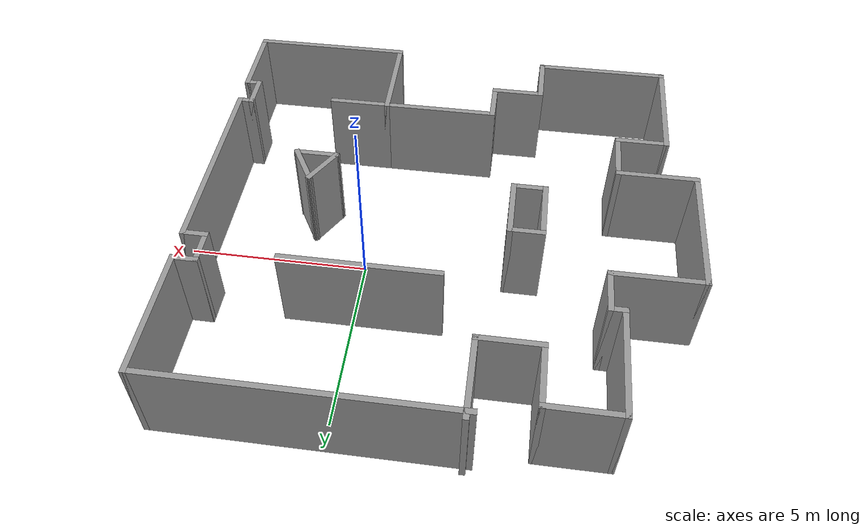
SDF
<?xml version='1.0'?>
<sdf version='1.7'>
  <model name='test3'>
    <pose>-2.21885 -0.539632 0 0 -0 0</pose>
    <link name='Wall_10'>
      <collision name='Wall_10_Collision'>
        <geometry>
          <box>
            <size>0.5 0.15 2.5</size>
          </box>
        </geometry>
        <pose>0 0 1.25 0 -0 0</pose>
      </collision>
      <visual name='Wall_10_Visual'>
        <pose>0 0 1.25 0 -0 0</pose>
        <geometry>
          <box>
            <size>0.5 0.15 2.5</size>
          </box>
        </geometry>
        <material>
          <script>
            <uri>file://media/materials/scripts/gazebo.material</uri>
            <name>Gazebo/Grey</name>
          </script>
          <ambient>1 1 1 1</ambient>
        </material>
        <meta>
          <layer>0</layer>
        </meta>
      </visual>
      <pose>6.4 -3.375 0 0 -0 3.14159</pose>
    </link>
    <link name='Wall_11'>
      <collision name='Wall_11_Collision'>
        <geometry>
          <box>
            <size>1 0.15 2.5</size>
          </box>
        </geometry>
        <pose>0 0 1.25 0 -0 0</pose>
      </collision>
      <visual name='Wall_11_Visual'>
        <pose>0 0 1.25 0 -0 0</pose>
        <geometry>
          <box>
            <size>1 0.15 2.5</size>
          </box>
        </geometry>
        <material>
          <script>
            <uri>file://media/materials/scripts/gazebo.material</uri>
            <name>Gazebo/Grey</name>
          </script>
          <ambient>1 1 1 1</ambient>
        </material>
        <meta>
          <layer>0</layer>
        </meta>
      </visual>
      <pose>6.225 -3.8 0 0 -0 -1.5708</pose>
    </link>
    <link name='Wall_14'>
      <collision name='Wall_14_Collision'>
        <geometry>
          <box>
            <size>0.5 0.15 2.5</size>
          </box>
        </geometry>
        <pose>0 0 1.25 0 -0 0</pose>
      </collision>
      <visual name='Wall_14_Visual'>
        <pose>0 0 1.25 0 -0 0</pose>
        <geometry>
          <box>
            <size>0.5 0.15 2.5</size>
          </box>
        </geometry>
        <material>
          <script>
            <uri>file://media/materials/scripts/gazebo.material</uri>
            <name>Gazebo/Grey</name>
          </script>
          <ambient>1 1 1 1</ambient>
        </material>
        <meta>
          <layer>0</layer>
        </meta>
      </visual>
      <pose>6.4 -4.225 0 0 -0 0</pose>
    </link>
    <link name='Wall_15'>
      <collision name='Wall_15_Collision'>
        <geometry>
          <box>
            <size>2.25 0.15 2.5</size>
          </box>
        </geometry>
        <pose>0 0 1.25 0 -0 0</pose>
      </collision>
      <visual name='Wall_15_Visual'>
        <pose>0 0 1.25 0 -0 0</pose>
        <geometry>
          <box>
            <size>2.25 0.15 2.5</size>
          </box>
        </geometry>
        <material>
          <script>
            <uri>file://media/materials/scripts/gazebo.material</uri>
            <name>Gazebo/Grey</name>
          </script>
          <ambient>1 1 1 1</ambient>
        </material>
        <meta>
          <layer>0</layer>
        </meta>
      </visual>
      <pose>6.575 -5.275 0 0 -0 -1.5708</pose>
    </link>
    <link name='Wall_16'>
      <collision name='Wall_16_Collision'>
        <geometry>
          <box>
            <size>4.5 0.15 2.5</size>
          </box>
        </geometry>
        <pose>0 0 1.25 0 -0 0</pose>
      </collision>
      <visual name='Wall_16_Visual'>
        <pose>0 0 1.25 0 -0 0</pose>
        <geometry>
          <box>
            <size>4.5 0.15 2.5</size>
          </box>
        </geometry>
        <material>
          <script>
            <uri>file://media/materials/scripts/gazebo.material</uri>
            <name>Gazebo/Grey</name>
          </script>
          <ambient>1 1 1 1</ambient>
        </material>
        <meta>
          <layer>0</layer>
        </meta>
      </visual>
      <pose>4.4 -6.325 0 0 -0 3.14159</pose>
    </link>
    <link name='Wall_17'>
      <collision name='Wall_17_Collision'>
        <geometry>
          <box>
            <size>2.75 0.15 2.5</size>
          </box>
        </geometry>
        <pose>0 0 1.25 0 -0 0</pose>
      </collision>
      <visual name='Wall_17_Visual'>
        <pose>0 0 1.25 0 -0 0</pose>
        <geometry>
          <box>
            <size>2.75 0.15 2.5</size>
          </box>
        </geometry>
        <material>
          <script>
            <uri>file://media/materials/scripts/gazebo.material</uri>
            <name>Gazebo/Grey</name>
          </script>
          <ambient>1 1 1 1</ambient>
        </material>
        <meta>
          <layer>0</layer>
        </meta>
      </visual>
      <pose>2.225 -5.025 0 0 -0 1.5708</pose>
    </link>
    <link name='Wall_18'>
      <collision name='Wall_18_Collision'>
        <geometry>
          <box>
            <size>1.75 0.15 2.5</size>
          </box>
        </geometry>
        <pose>0 0 1.25 0 -0 0</pose>
      </collision>
      <visual name='Wall_18_Visual'>
        <pose>0 0 1.25 0 -0 0</pose>
        <geometry>
          <box>
            <size>1.75 0.15 2.5</size>
          </box>
        </geometry>
        <material>
          <script>
            <uri>file://media/materials/scripts/gazebo.material</uri>
            <name>Gazebo/Grey</name>
          </script>
          <ambient>1 1 1 1</ambient>
        </material>
        <meta>
          <layer>0</layer>
        </meta>
      </visual>
      <pose>3.025 -3.725 0 0 -0 0</pose>
    </link>
    <link name='Wall_20'>
      <collision name='Wall_20_Collision'>
        <geometry>
          <box>
            <size>3.25 0.15 2.5</size>
          </box>
        </geometry>
        <pose>0 0 1.25 0 -0 0</pose>
      </collision>
      <visual name='Wall_20_Visual'>
        <pose>0 0 1.25 0 -0 0</pose>
        <geometry>
          <box>
            <size>3.25 0.15 2.5</size>
          </box>
        </geometry>
        <material>
          <script>
            <uri>file://media/materials/scripts/gazebo.material</uri>
            <name>Gazebo/Grey</name>
          </script>
          <ambient>1 1 1 1</ambient>
        </material>
        <meta>
          <layer>0</layer>
        </meta>
      </visual>
      <pose>0.675 -3.725 0 0 -0 3.14159</pose>
    </link>
    <link name='Wall_21'>
      <collision name='Wall_21_Collision'>
        <geometry>
          <box>
            <size>1.25 0.15 2.5</size>
          </box>
        </geometry>
        <pose>0 0 1.25 0 -0 0</pose>
      </collision>
      <visual name='Wall_21_Visual'>
        <pose>0 0 1.25 0 -0 0</pose>
        <geometry>
          <box>
            <size>1.25 0.15 2.5</size>
          </box>
        </geometry>
        <material>
          <script>
            <uri>file://media/materials/scripts/gazebo.material</uri>
            <name>Gazebo/Grey</name>
          </script>
          <ambient>1 1 1 1</ambient>
        </material>
        <meta>
          <layer>0</layer>
        </meta>
      </visual>
      <pose>-0.875 -4.275 0 0 -0 -1.5708</pose>
    </link>
    <link name='Wall_22'>
      <collision name='Wall_22_Collision'>
        <geometry>
          <box>
            <size>1.5 0.15 2.5</size>
          </box>
        </geometry>
        <pose>0 0 1.25 0 -0 0</pose>
      </collision>
      <visual name='Wall_22_Visual'>
        <pose>0 0 1.25 0 -0 0</pose>
        <geometry>
          <box>
            <size>1.5 0.15 2.5</size>
          </box>
        </geometry>
        <material>
          <script>
            <uri>file://media/materials/scripts/gazebo.material</uri>
            <name>Gazebo/Grey</name>
          </script>
          <ambient>1 1 1 1</ambient>
        </material>
        <meta>
          <layer>0</layer>
        </meta>
      </visual>
      <pose>-1.55 -4.825 0 0 -0 3.14159</pose>
    </link>
    <link name='Wall_23'>
      <collision name='Wall_23_Collision'>
        <geometry>
          <box>
            <size>1.5 0.15 2.5</size>
          </box>
        </geometry>
        <pose>0 0 1.25 0 -0 0</pose>
      </collision>
      <visual name='Wall_23_Visual'>
        <pose>0 0 1.25 0 -0 0</pose>
        <geometry>
          <box>
            <size>1.5 0.15 2.5</size>
          </box>
        </geometry>
        <material>
          <script>
            <uri>file://media/materials/scripts/gazebo.material</uri>
            <name>Gazebo/Grey</name>
          </script>
          <ambient>1 1 1 1</ambient>
        </material>
        <meta>
          <layer>0</layer>
        </meta>
      </visual>
      <pose>-2.225 -5.5 0 0 -0 -1.5708</pose>
    </link>
    <link name='Wall_24'>
      <collision name='Wall_24_Collision'>
        <geometry>
          <box>
            <size>3.75 0.15 2.5</size>
          </box>
        </geometry>
        <pose>0 0 1.25 0 -0 0</pose>
      </collision>
      <visual name='Wall_24_Visual'>
        <pose>0 0 1.25 0 -0 0</pose>
        <geometry>
          <box>
            <size>3.75 0.15 2.5</size>
          </box>
        </geometry>
        <material>
          <script>
            <uri>file://media/materials/scripts/gazebo.material</uri>
            <name>Gazebo/Grey</name>
          </script>
          <ambient>1 1 1 1</ambient>
        </material>
        <meta>
          <layer>0</layer>
        </meta>
      </visual>
      <pose>-4.025 -6.175 0 0 -0 3.14159</pose>
    </link>
    <link name='Wall_25'>
      <collision name='Wall_25_Collision'>
        <geometry>
          <box>
            <size>3.25 0.15 2.5</size>
          </box>
        </geometry>
        <pose>0 0 1.25 0 -0 0</pose>
      </collision>
      <visual name='Wall_25_Visual'>
        <pose>0 0 1.25 0 -0 0</pose>
        <geometry>
          <box>
            <size>3.25 0.15 2.5</size>
          </box>
        </geometry>
        <material>
          <script>
            <uri>file://media/materials/scripts/gazebo.material</uri>
            <name>Gazebo/Grey</name>
          </script>
          <ambient>1 1 1 1</ambient>
        </material>
        <meta>
          <layer>0</layer>
        </meta>
      </visual>
      <pose>-5.825 -4.625 0 0 -0 1.5708</pose>
    </link>
    <link name='Wall_26'>
      <collision name='Wall_26_Collision'>
        <geometry>
          <box>
            <size>1.5 0.15 2.5</size>
          </box>
        </geometry>
        <pose>0 0 1.25 0 -0 0</pose>
      </collision>
      <visual name='Wall_26_Visual'>
        <pose>0 0 1.25 0 -0 0</pose>
        <geometry>
          <box>
            <size>1.5 0.15 2.5</size>
          </box>
        </geometry>
        <material>
          <script>
            <uri>file://media/materials/scripts/gazebo.material</uri>
            <name>Gazebo/Grey</name>
          </script>
          <ambient>1 1 1 1</ambient>
        </material>
        <meta>
          <layer>0</layer>
        </meta>
      </visual>
      <pose>-5.15 -3.075 0 0 -0 0</pose>
    </link>
    <link name='Wall_27'>
      <collision name='Wall_27_Collision'>
        <geometry>
          <box>
            <size>1.5 0.15 2.5</size>
          </box>
        </geometry>
        <pose>0 0 1.25 0 -0 0</pose>
      </collision>
      <visual name='Wall_27_Visual'>
        <pose>0 0 1.25 0 -0 0</pose>
        <geometry>
          <box>
            <size>1.5 0.15 2.5</size>
          </box>
        </geometry>
        <material>
          <script>
            <uri>file://media/materials/scripts/gazebo.material</uri>
            <name>Gazebo/Grey</name>
          </script>
          <ambient>1 1 1 1</ambient>
        </material>
        <meta>
          <layer>0</layer>
        </meta>
      </visual>
      <pose>-4.475 -2.4 0 0 -0 1.5708</pose>
    </link>
    <link name='Wall_28'>
      <collision name='Wall_28_Collision'>
        <geometry>
          <box>
            <size>2.25 0.15 2.5</size>
          </box>
        </geometry>
        <pose>0 0 1.25 0 -0 0</pose>
      </collision>
      <visual name='Wall_28_Visual'>
        <pose>0 0 1.25 0 -0 0</pose>
        <geometry>
          <box>
            <size>2.25 0.15 2.5</size>
          </box>
        </geometry>
        <material>
          <script>
            <uri>file://media/materials/scripts/gazebo.material</uri>
            <name>Gazebo/Grey</name>
          </script>
          <ambient>1 1 1 1</ambient>
        </material>
        <meta>
          <layer>0</layer>
        </meta>
      </visual>
      <pose>-5.525 -1.725 0 0 -0 3.14159</pose>
    </link>
    <link name='Wall_29'>
      <collision name='Wall_29_Collision'>
        <geometry>
          <box>
            <size>3.75 0.15 2.5</size>
          </box>
        </geometry>
        <pose>0 0 1.25 0 -0 0</pose>
      </collision>
      <visual name='Wall_29_Visual'>
        <pose>0 0 1.25 0 -0 0</pose>
        <geometry>
          <box>
            <size>3.75 0.15 2.5</size>
          </box>
        </geometry>
        <material>
          <script>
            <uri>file://media/materials/scripts/gazebo.material</uri>
            <name>Gazebo/Grey</name>
          </script>
          <ambient>1 1 1 1</ambient>
        </material>
        <meta>
          <layer>0</layer>
        </meta>
      </visual>
      <pose>-6.575 0.075 0 0 -0 1.5708</pose>
    </link>
    <link name='Wall_30'>
      <collision name='Wall_30_Collision'>
        <geometry>
          <box>
            <size>2.5 0.15 2.5</size>
          </box>
        </geometry>
        <pose>0 0 1.25 0 -0 0</pose>
      </collision>
      <visual name='Wall_30_Visual'>
        <pose>0 0 1.25 0 -0 0</pose>
        <geometry>
          <box>
            <size>2.5 0.15 2.5</size>
          </box>
        </geometry>
        <material>
          <script>
            <uri>file://media/materials/scripts/gazebo.material</uri>
            <name>Gazebo/Grey</name>
          </script>
          <ambient>1 1 1 1</ambient>
        </material>
        <meta>
          <layer>0</layer>
        </meta>
      </visual>
      <pose>-5.4 1.875 0 0 -0 0</pose>
    </link>
    <link name='Wall_31'>
      <collision name='Wall_31_Collision'>
        <geometry>
          <box>
            <size>1.25 0.15 2.5</size>
          </box>
        </geometry>
        <pose>0 0 1.25 0 -0 0</pose>
      </collision>
      <visual name='Wall_31_Visual'>
        <pose>0 0 1.25 0 -0 0</pose>
        <geometry>
          <box>
            <size>1.25 0.15 2.5</size>
          </box>
        </geometry>
        <material>
          <script>
            <uri>file://media/materials/scripts/gazebo.material</uri>
            <name>Gazebo/Grey</name>
          </script>
          <ambient>1 1 1 1</ambient>
        </material>
        <meta>
          <layer>0</layer>
        </meta>
      </visual>
      <pose>-4.225 2.425 0 0 -0 1.5708</pose>
    </link>
    <link name='Wall_32'>
      <collision name='Wall_32_Collision'>
        <geometry>
          <box>
            <size>0.5 0.15 2.5</size>
          </box>
        </geometry>
        <pose>0 0 1.25 0 -0 0</pose>
      </collision>
      <visual name='Wall_32_Visual'>
        <pose>0 0 1.25 0 -0 0</pose>
        <geometry>
          <box>
            <size>0.5 0.15 2.5</size>
          </box>
        </geometry>
        <material>
          <script>
            <uri>file://media/materials/scripts/gazebo.material</uri>
            <name>Gazebo/Grey</name>
          </script>
          <ambient>1 1 1 1</ambient>
        </material>
        <meta>
          <layer>0</layer>
        </meta>
      </visual>
      <pose>-4.4 2.975 0 0 -0 3.14159</pose>
    </link>
    <link name='Wall_33'>
      <collision name='Wall_33_Collision'>
        <geometry>
          <box>
            <size>3 0.15 2.5</size>
          </box>
        </geometry>
        <pose>0 0 1.25 0 -0 0</pose>
      </collision>
      <visual name='Wall_33_Visual'>
        <pose>0 0 1.25 0 -0 0</pose>
        <geometry>
          <box>
            <size>3 0.15 2.5</size>
          </box>
        </geometry>
        <material>
          <script>
            <uri>file://media/materials/scripts/gazebo.material</uri>
            <name>Gazebo/Grey</name>
          </script>
          <ambient>1 1 1 1</ambient>
        </material>
        <meta>
          <layer>0</layer>
        </meta>
      </visual>
      <pose>-4.575 4.4 0 0 -0 1.5708</pose>
    </link>
    <link name='Wall_34'>
      <collision name='Wall_34_Collision'>
        <geometry>
          <box>
            <size>2 0.15 2.5</size>
          </box>
        </geometry>
        <pose>0 0 1.25 0 -0 0</pose>
      </collision>
      <visual name='Wall_34_Visual'>
        <pose>0 0 1.25 0 -0 0</pose>
        <geometry>
          <box>
            <size>2 0.15 2.5</size>
          </box>
        </geometry>
        <material>
          <script>
            <uri>file://media/materials/scripts/gazebo.material</uri>
            <name>Gazebo/Grey</name>
          </script>
          <ambient>1 1 1 1</ambient>
        </material>
        <meta>
          <layer>0</layer>
        </meta>
      </visual>
      <pose>-3.65 5.825 0 0 -0 0</pose>
    </link>
    <link name='Wall_35'>
      <collision name='Wall_35_Collision'>
        <geometry>
          <box>
            <size>1.75 0.15 2.5</size>
          </box>
        </geometry>
        <pose>0 0 1.25 0 -0 0</pose>
      </collision>
      <visual name='Wall_35_Visual'>
        <pose>0 0 1.25 0 -0 0</pose>
        <geometry>
          <box>
            <size>1.75 0.15 2.5</size>
          </box>
        </geometry>
        <material>
          <script>
            <uri>file://media/materials/scripts/gazebo.material</uri>
            <name>Gazebo/Grey</name>
          </script>
          <ambient>1 1 1 1</ambient>
        </material>
        <meta>
          <layer>0</layer>
        </meta>
      </visual>
      <pose>-2.725 5.025 0 0 -0 -1.5708</pose>
    </link>
    <link name='Wall_36'>
      <collision name='Wall_36_Collision'>
        <geometry>
          <box>
            <size>1.75 0.15 2.5</size>
          </box>
        </geometry>
        <pose>0 0 1.25 0 -0 0</pose>
      </collision>
      <visual name='Wall_36_Visual'>
        <pose>0 0 1.25 0 -0 0</pose>
        <geometry>
          <box>
            <size>1.75 0.15 2.5</size>
          </box>
        </geometry>
        <material>
          <script>
            <uri>file://media/materials/scripts/gazebo.material</uri>
            <name>Gazebo/Grey</name>
          </script>
          <ambient>1 1 1 1</ambient>
        </material>
        <meta>
          <layer>0</layer>
        </meta>
      </visual>
      <pose>-1.925 4.225 0 0 -0 0</pose>
    </link>
    <link name='Wall_37'>
      <collision name='Wall_37_Collision'>
        <geometry>
          <box>
            <size>2.25 0.15 2.5</size>
          </box>
        </geometry>
        <pose>0 0 1.25 0 -0 0</pose>
      </collision>
      <visual name='Wall_37_Visual'>
        <pose>0 0 1.25 0 -0 0</pose>
        <geometry>
          <box>
            <size>2.25 0.15 2.5</size>
          </box>
        </geometry>
        <material>
          <script>
            <uri>file://media/materials/scripts/gazebo.material</uri>
            <name>Gazebo/Grey</name>
          </script>
          <ambient>1 1 1 1</ambient>
        </material>
        <meta>
          <layer>0</layer>
        </meta>
      </visual>
      <pose>-1.125 5.275 0 0 -0 1.5708</pose>
    </link>
    <link name='Wall_39'>
      <collision name='Wall_39_Collision'>
        <geometry>
          <box>
            <size>4.25 0.15 2.5</size>
          </box>
        </geometry>
        <pose>0 0 1.25 0 -0 0</pose>
      </collision>
      <visual name='Wall_39_Visual'>
        <pose>0 0 1.25 0 -0 0</pose>
        <geometry>
          <box>
            <size>4.25 0.15 2.5</size>
          </box>
        </geometry>
        <material>
          <script>
            <uri>file://media/materials/scripts/gazebo.material</uri>
            <name>Gazebo/Grey</name>
          </script>
          <ambient>1 1 1 1</ambient>
        </material>
        <meta>
          <layer>0</layer>
        </meta>
      </visual>
      <pose>1.93011 2.44299 0 0 -0 0</pose>
    </link>
    <link name='Wall_4'>
      <collision name='Wall_4_Collision'>
        <geometry>
          <box>
            <size>8 0.15 2.5</size>
          </box>
        </geometry>
        <pose>0 0 1.25 0 -0 0</pose>
      </collision>
      <visual name='Wall_4_Visual'>
        <pose>0 0 1.25 0 -0 0</pose>
        <geometry>
          <box>
            <size>8 0.15 2.5</size>
          </box>
        </geometry>
        <material>
          <script>
            <uri>file://media/materials/scripts/gazebo.material</uri>
            <name>Gazebo/Grey</name>
          </script>
          <ambient>1 1 1 1</ambient>
        </material>
        <meta>
          <layer>0</layer>
        </meta>
      </visual>
      <pose>2.65 6.175 0 0 -0 0</pose>
    </link>
    <link name='Wall_41'>
      <collision name='Wall_41_Collision'>
        <geometry>
          <box>
            <size>1.75 0.15 2.5</size>
          </box>
        </geometry>
        <pose>0 0 1.25 0 -0 0</pose>
      </collision>
      <visual name='Wall_41_Visual'>
        <pose>0 0 1.25 0 -0 0</pose>
        <geometry>
          <box>
            <size>1.75 0.15 2.5</size>
          </box>
        </geometry>
        <material>
          <script>
            <uri>file://media/materials/scripts/gazebo.material</uri>
            <name>Gazebo/Grey</name>
          </script>
          <ambient>1 1 1 1</ambient>
        </material>
        <meta>
          <layer>0</layer>
        </meta>
      </visual>
      <pose>-2.53652 -0.03947 0 0 -0 -1.5708</pose>
    </link>
    <link name='Wall_42'>
      <collision name='Wall_42_Collision'>
        <geometry>
          <box>
            <size>1 0.15 2.5</size>
          </box>
        </geometry>
        <pose>0 0 1.25 0 -0 0</pose>
      </collision>
      <visual name='Wall_42_Visual'>
        <pose>0 0 1.25 0 -0 0</pose>
        <geometry>
          <box>
            <size>1 0.15 2.5</size>
          </box>
        </geometry>
        <material>
          <script>
            <uri>file://media/materials/scripts/gazebo.material</uri>
            <name>Gazebo/Grey</name>
          </script>
          <ambient>1 1 1 1</ambient>
        </material>
        <meta>
          <layer>0</layer>
        </meta>
      </visual>
      <pose>-2.11152 -0.83947 0 0 -0 0</pose>
    </link>
    <link name='Wall_43'>
      <collision name='Wall_43_Collision'>
        <geometry>
          <box>
            <size>1.75 0.15 2.5</size>
          </box>
        </geometry>
        <pose>0 0 1.25 0 -0 0</pose>
      </collision>
      <visual name='Wall_43_Visual'>
        <pose>0 0 1.25 0 -0 0</pose>
        <geometry>
          <box>
            <size>1.75 0.15 2.5</size>
          </box>
        </geometry>
        <material>
          <script>
            <uri>file://media/materials/scripts/gazebo.material</uri>
            <name>Gazebo/Grey</name>
          </script>
          <ambient>1 1 1 1</ambient>
        </material>
        <meta>
          <layer>0</layer>
        </meta>
      </visual>
      <pose>-1.68652 -0.03947 0 0 -0 1.5708</pose>
    </link>
    <link name='Wall_44'>
      <collision name='Wall_44_Collision'>
        <geometry>
          <box>
            <size>1 0.15 2.5</size>
          </box>
        </geometry>
        <pose>0 0 1.25 0 -0 0</pose>
      </collision>
      <visual name='Wall_44_Visual'>
        <pose>0 0 1.25 0 -0 0</pose>
        <geometry>
          <box>
            <size>1 0.15 2.5</size>
          </box>
        </geometry>
        <material>
          <script>
            <uri>file://media/materials/scripts/gazebo.material</uri>
            <name>Gazebo/Grey</name>
          </script>
          <ambient>1 1 1 1</ambient>
        </material>
        <meta>
          <layer>0</layer>
        </meta>
      </visual>
      <pose>-2.11152 0.76053 0 0 -0 3.14159</pose>
    </link>
    <link name='Wall_46'>
      <collision name='Wall_46_Collision'>
        <geometry>
          <box>
            <size>1.25 0.15 2.5</size>
          </box>
        </geometry>
        <pose>0 0 1.25 0 -0 0</pose>
      </collision>
      <visual name='Wall_46_Visual'>
        <pose>0 0 1.25 0 -0 0</pose>
        <geometry>
          <box>
            <size>1.25 0.15 2.5</size>
          </box>
        </geometry>
        <material>
          <script>
            <uri>file://media/materials/scripts/gazebo.material</uri>
            <name>Gazebo/Grey</name>
          </script>
          <ambient>1 1 1 1</ambient>
        </material>
        <meta>
          <layer>0</layer>
        </meta>
      </visual>
      <pose>3.55125 -0.908803 0 0 -0 -2.0944</pose>
    </link>
    <link name='Wall_47'>
      <collision name='Wall_47_Collision'>
        <geometry>
          <box>
            <size>1.25 0.15 2.5</size>
          </box>
        </geometry>
        <pose>0 0 1.25 0 -0 0</pose>
      </collision>
      <visual name='Wall_47_Visual'>
        <pose>0 0 1.25 0 -0 0</pose>
        <geometry>
          <box>
            <size>1.25 0.15 2.5</size>
          </box>
        </geometry>
        <material>
          <script>
            <uri>file://media/materials/scripts/gazebo.material</uri>
            <name>Gazebo/Grey</name>
          </script>
          <ambient>1 1 1 1</ambient>
        </material>
        <meta>
          <layer>0</layer>
        </meta>
      </visual>
      <pose>3.82625 -1.38512 0 0 -0 0</pose>
    </link>
    <link name='Wall_48'>
      <collision name='Wall_48_Collision'>
        <geometry>
          <box>
            <size>1.25 0.15 2.5</size>
          </box>
        </geometry>
        <pose>0 0 1.25 0 -0 0</pose>
      </collision>
      <visual name='Wall_48_Visual'>
        <pose>0 0 1.25 0 -0 0</pose>
        <geometry>
          <box>
            <size>1.25 0.15 2.5</size>
          </box>
        </geometry>
        <material>
          <script>
            <uri>file://media/materials/scripts/gazebo.material</uri>
            <name>Gazebo/Grey</name>
          </script>
          <ambient>1 1 1 1</ambient>
        </material>
        <meta>
          <layer>0</layer>
        </meta>
      </visual>
      <pose>4.10125 -0.908803 0 0 -0 2.0944</pose>
    </link>
    <link name='Wall_5'>
      <collision name='Wall_5_Collision'>
        <geometry>
          <box>
            <size>3.5 0.15 2.5</size>
          </box>
        </geometry>
        <pose>0 0 1.25 0 -0 0</pose>
      </collision>
      <visual name='Wall_5_Visual'>
        <pose>0 0 1.25 0 -0 0</pose>
        <geometry>
          <box>
            <size>3.5 0.15 2.5</size>
          </box>
        </geometry>
        <material>
          <script>
            <uri>file://media/materials/scripts/gazebo.material</uri>
            <name>Gazebo/Grey</name>
          </script>
          <ambient>1 1 1 1</ambient>
        </material>
        <meta>
          <layer>0</layer>
        </meta>
      </visual>
      <pose>6.575 4.5 0 0 -0 -1.5708</pose>
    </link>
    <link name='Wall_6'>
      <collision name='Wall_6_Collision'>
        <geometry>
          <box>
            <size>0.75 0.15 2.5</size>
          </box>
        </geometry>
        <pose>0 0 1.25 0 -0 0</pose>
      </collision>
      <visual name='Wall_6_Visual'>
        <pose>0 0 1.25 0 -0 0</pose>
        <geometry>
          <box>
            <size>0.75 0.15 2.5</size>
          </box>
        </geometry>
        <material>
          <script>
            <uri>file://media/materials/scripts/gazebo.material</uri>
            <name>Gazebo/Grey</name>
          </script>
          <ambient>1 1 1 1</ambient>
        </material>
        <meta>
          <layer>0</layer>
        </meta>
      </visual>
      <pose>6.275 2.825 0 0 -0 3.14159</pose>
    </link>
    <link name='Wall_7'>
      <collision name='Wall_7_Collision'>
        <geometry>
          <box>
            <size>1 0.15 2.5</size>
          </box>
        </geometry>
        <pose>0 0 1.25 0 -0 0</pose>
      </collision>
      <visual name='Wall_7_Visual'>
        <pose>0 0 1.25 0 -0 0</pose>
        <geometry>
          <box>
            <size>1 0.15 2.5</size>
          </box>
        </geometry>
        <material>
          <script>
            <uri>file://media/materials/scripts/gazebo.material</uri>
            <name>Gazebo/Grey</name>
          </script>
          <ambient>1 1 1 1</ambient>
        </material>
        <meta>
          <layer>0</layer>
        </meta>
      </visual>
      <pose>5.975 2.4 0 0 -0 -1.5708</pose>
    </link>
    <link name='Wall_8'>
      <collision name='Wall_8_Collision'>
        <geometry>
          <box>
            <size>0.75 0.15 2.5</size>
          </box>
        </geometry>
        <pose>0 0 1.25 0 -0 0</pose>
      </collision>
      <visual name='Wall_8_Visual'>
        <pose>0 0 1.25 0 -0 0</pose>
        <geometry>
          <box>
            <size>0.75 0.15 2.5</size>
          </box>
        </geometry>
        <material>
          <script>
            <uri>file://media/materials/scripts/gazebo.material</uri>
            <name>Gazebo/Grey</name>
          </script>
          <ambient>1 1 1 1</ambient>
        </material>
        <meta>
          <layer>0</layer>
        </meta>
      </visual>
      <pose>6.275 1.975 0 0 -0 0</pose>
    </link>
    <link name='Wall_9'>
      <collision name='Wall_9_Collision'>
        <geometry>
          <box>
            <size>5.5 0.15 2.5</size>
          </box>
        </geometry>
        <pose>0 0 1.25 0 -0 0</pose>
      </collision>
      <visual name='Wall_9_Visual'>
        <pose>0 0 1.25 0 -0 0</pose>
        <geometry>
          <box>
            <size>5.5 0.15 2.5</size>
          </box>
        </geometry>
        <material>
          <script>
            <uri>file://media/materials/scripts/gazebo.material</uri>
            <name>Gazebo/Grey</name>
          </script>
          <ambient>1 1 1 1</ambient>
        </material>
        <meta>
          <layer>0</layer>
        </meta>
      </visual>
      <pose>6.575 -0.7 0 0 -0 -1.5708</pose>
    </link>
    <static>1</static>
  </model>
</sdf>
